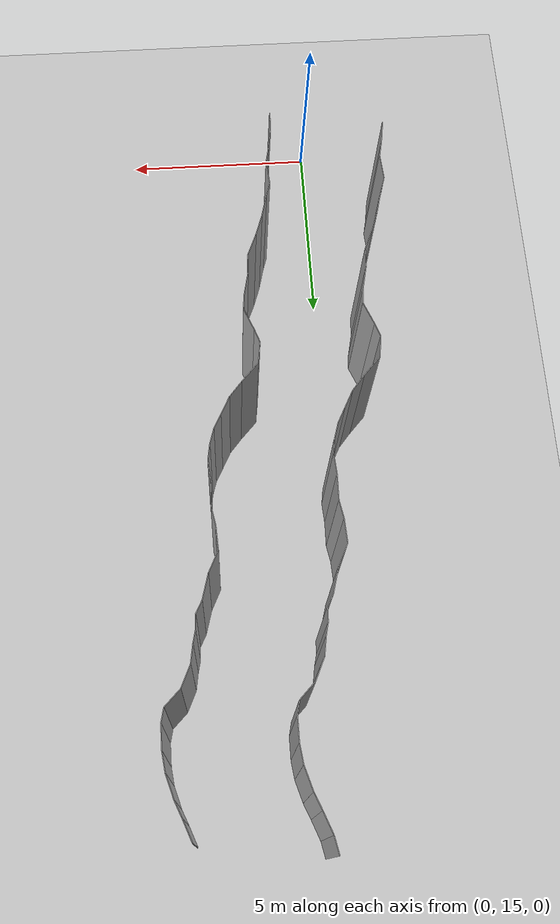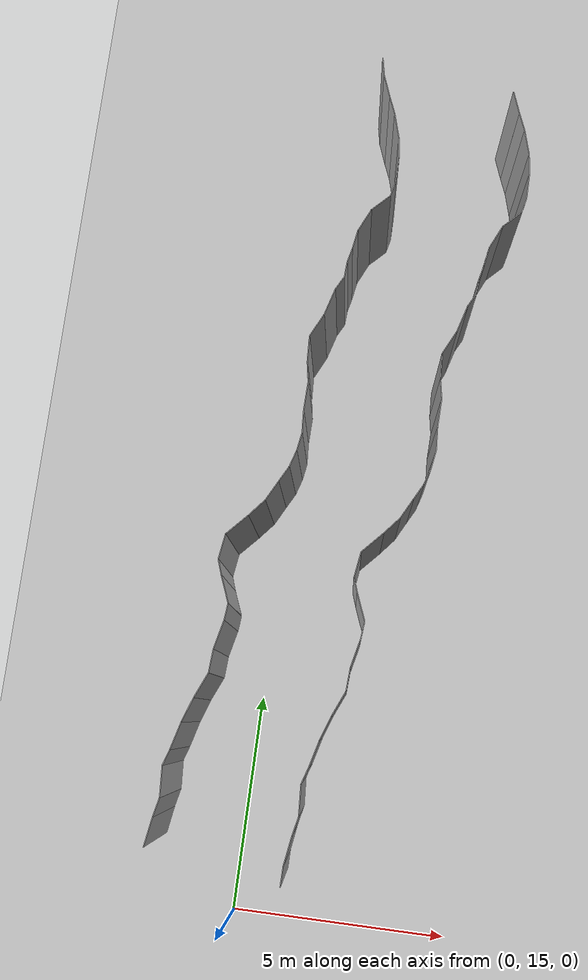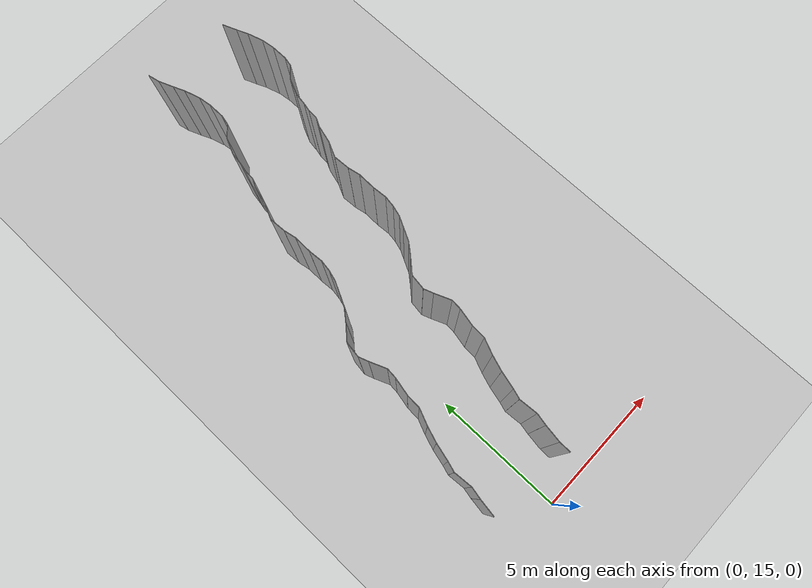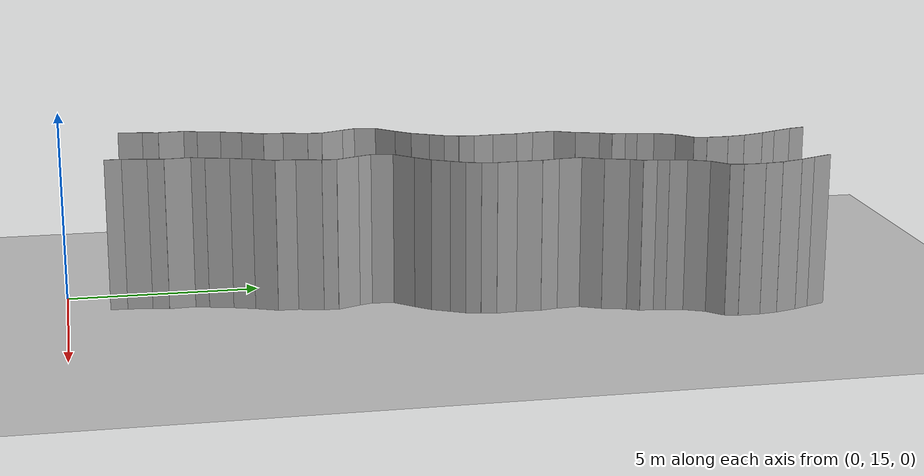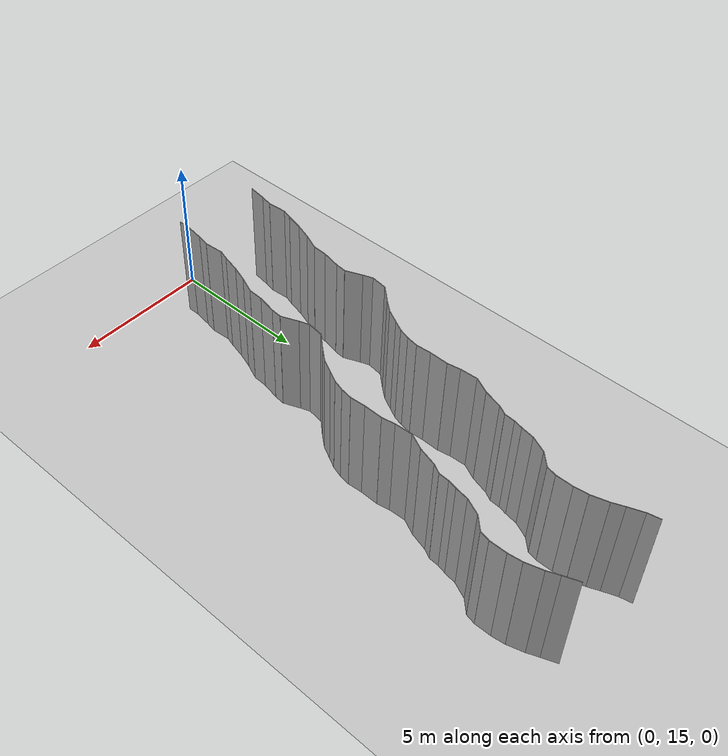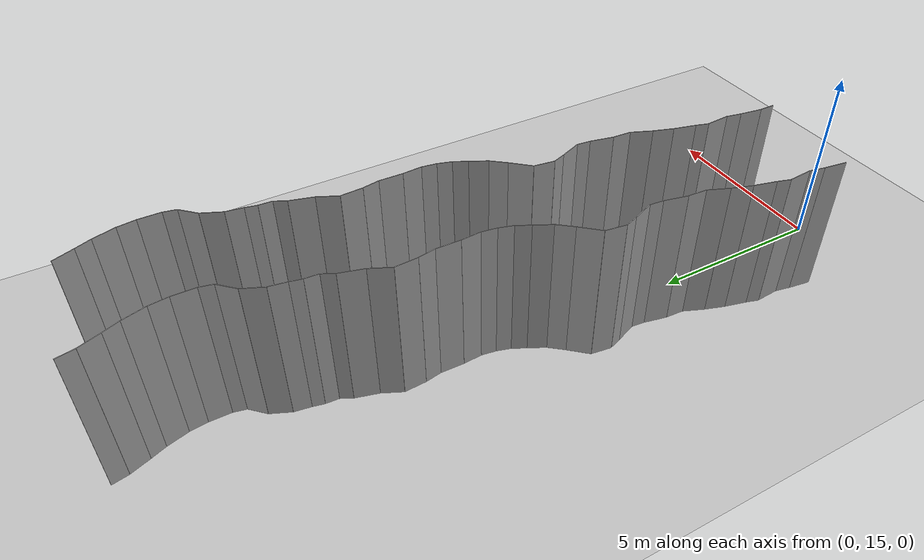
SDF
<sdf version="1.6">
 <world name="default">
  <model name="ground_plane">
   <static>1</static>
   <link name="link">
    <collision name="collision">
     <geometry><plane><normal>0 0 1</normal><size>200 200</size></plane></geometry>
     <surface><friction><ode><mu>100</mu><mu2>50</mu2></ode></friction></surface>
    </collision>
    <visual name="visual">
     <cast_shadows>0</cast_shadows>
     <geometry><plane><normal>0 0 1</normal><size>200 200</size></plane></geometry>
     <material>
      <script><uri>file://media/materials/scripts/gazebo.material</uri><name>Gazebo/Grey</name></script>
     </material>
    </visual>
   </link>
   <pose>0 100 0 0 -0 0</pose>
  </model>
  <model name="wall_73">
   <static>1</static>
   <pose>1.133397073225411 16.312448302352205 2 0 0 -0.007860814081408462</pose>
   <link name="link">
    <collision name="collision"><geometry><box><size>0.02 0.437636026162 4</size></box></geometry></collision>
    <visual name="visual">
     <material>
      <script><name>Gazebo/Grey</name><uri>file://media/materials/scripts/gazebo.material</uri></script>
     </material>
     <geometry><box><size>0.02 0.437636026162 4</size></box></geometry>
    </visual>
   </link>
  </model>
  <model name="wall_74">
   <static>1</static>
   <pose>-1.816891280814868 16.852372335375506 2 0 0 -0.14835587828445984</pose>
   <link name="link">
    <collision name="collision"><geometry><box><size>0.02 0.649358480954 4</size></box></geometry></collision>
    <visual name="visual">
     <material>
      <script><name>Gazebo/Grey</name><uri>file://media/materials/scripts/gazebo.material</uri></script>
     </material>
     <geometry><box><size>0.02 0.649358480954 4</size></box></geometry>
    </visual>
   </link>
  </model>
  <model name="wall_75">
   <static>1</static>
   <pose>1.183108719185132 16.852372335375506 2 0 0 -0.14835587828445984</pose>
   <link name="link">
    <collision name="collision"><geometry><box><size>0.02 0.649358480954 4</size></box></geometry></collision>
    <visual name="visual">
     <material>
      <script><name>Gazebo/Grey</name><uri>file://media/materials/scripts/gazebo.material</uri></script>
     </material>
     <geometry><box><size>0.02 0.649358480954 4</size></box></geometry>
    </visual>
   </link>
  </model>
  <model name="wall_76">
   <static>1</static>
   <pose>-1.7247594297939466 17.385581224090693 2 0 0 -0.20518564760319122</pose>
   <link name="link">
    <collision name="collision"><geometry><box><size>0.02 0.433281077273 4</size></box></geometry></collision>
    <visual name="visual">
     <material>
      <script><name>Gazebo/Grey</name><uri>file://media/materials/scripts/gazebo.material</uri></script>
     </material>
     <geometry><box><size>0.02 0.433281077273 4</size></box></geometry>
    </visual>
   </link>
  </model>
  <model name="wall_77">
   <static>1</static>
   <pose>1.2752405702060534 17.385581224090693 2 0 0 -0.20518564760319122</pose>
   <link name="link">
    <collision name="collision"><geometry><box><size>0.02 0.433281077273 4</size></box></geometry></collision>
    <visual name="visual">
     <material>
      <script><name>Gazebo/Grey</name><uri>file://media/materials/scripts/gazebo.material</uri></script>
     </material>
     <geometry><box><size>0.02 0.433281077273 4</size></box></geometry>
    </visual>
   </link>
  </model>
  <model name="wall_78">
   <static>1</static>
   <pose>-1.7038177128958185 17.93762693356233 2 0 0 0.06813553412664795</pose>
   <link name="link">
    <collision name="collision"><geometry><box><size>0.02 0.681480460559 4</size></box></geometry></collision>
    <visual name="visual">
     <material>
      <script><name>Gazebo/Grey</name><uri>file://media/materials/scripts/gazebo.material</uri></script>
     </material>
     <geometry><box><size>0.02 0.681480460559 4</size></box></geometry>
    </visual>
   </link>
  </model>
  <model name="wall_79">
   <static>1</static>
   <pose>1.2961822871041815 17.93762693356233 2 0 0 0.06813553412664795</pose>
   <link name="link">
    <collision name="collision"><geometry><box><size>0.02 0.681480460559 4</size></box></geometry></collision>
    <visual name="visual">
     <material>
      <script><name>Gazebo/Grey</name><uri>file://media/materials/scripts/gazebo.material</uri></script>
     </material>
     <geometry><box><size>0.02 0.681480460559 4</size></box></geometry>
    </visual>
   </link>
  </model>
  <model name="wall_80">
   <static>1</static>
   <pose>-1.6719285623371034 18.453527863143353 2 0 0 -0.30341766661243313</pose>
   <link name="link">
    <collision name="collision"><geometry><box><size>0.02 0.368746664112 4</size></box></geometry></collision>
    <visual name="visual">
     <material>
      <script><name>Gazebo/Grey</name><uri>file://media/materials/scripts/gazebo.material</uri></script>
     </material>
     <geometry><box><size>0.02 0.368746664112 4</size></box></geometry>
    </visual>
   </link>
  </model>
  <model name="wall_81">
   <static>1</static>
   <pose>1.3280714376628966 18.453527863143353 2 0 0 -0.30341766661243313</pose>
   <link name="link">
    <collision name="collision"><geometry><box><size>0.02 0.368746664112 4</size></box></geometry></collision>
    <visual name="visual">
     <material>
      <script><name>Gazebo/Grey</name><uri>file://media/materials/scripts/gazebo.material</uri></script>
     </material>
     <geometry><box><size>0.02 0.368746664112 4</size></box></geometry>
    </visual>
   </link>
  </model>
  <model name="wall_82">
   <static>1</static>
   <pose>-1.5385484765214832 18.93772542409478 2 0 0 -0.24873321032891926</pose>
   <link name="link">
    <collision name="collision"><geometry><box><size>0.02 0.636067406086 4</size></box></geometry></collision>
    <visual name="visual">
     <material>
      <script><name>Gazebo/Grey</name><uri>file://media/materials/scripts/gazebo.material</uri></script>
     </material>
     <geometry><box><size>0.02 0.636067406086 4</size></box></geometry>
    </visual>
   </link>
  </model>
  <model name="wall_83">
   <static>1</static>
   <pose>1.4614515234785168 18.93772542409478 2 0 0 -0.24873321032891926</pose>
   <link name="link">
    <collision name="collision"><geometry><box><size>0.02 0.636067406086 4</size></box></geometry></collision>
    <visual name="visual">
     <material>
      <script><name>Gazebo/Grey</name><uri>file://media/materials/scripts/gazebo.material</uri></script>
     </material>
     <geometry><box><size>0.02 0.636067406086 4</size></box></geometry>
    </visual>
   </link>
  </model>
  <model name="wall_84">
   <static>1</static>
   <pose>-1.3666559243481262 19.520793661944364 2 0 0 -0.32826254191142534</pose>
   <link name="link">
    <collision name="collision"><geometry><box><size>0.02 0.580648352453 4</size></box></geometry></collision>
    <visual name="visual">
     <material>
      <script><name>Gazebo/Grey</name><uri>file://media/materials/scripts/gazebo.material</uri></script>
     </material>
     <geometry><box><size>0.02 0.580648352453 4</size></box></geometry>
    </visual>
   </link>
  </model>
  <model name="wall_85">
   <static>1</static>
   <pose>1.6333440756518738 19.520793661944364 2 0 0 -0.32826254191142534</pose>
   <link name="link">
    <collision name="collision"><geometry><box><size>0.02 0.580648352453 4</size></box></geometry></collision>
    <visual name="visual">
     <material>
      <script><name>Gazebo/Grey</name><uri>file://media/materials/scripts/gazebo.material</uri></script>
     </material>
     <geometry><box><size>0.02 0.580648352453 4</size></box></geometry>
    </visual>
   </link>
  </model>
  <model name="wall_86">
   <static>1</static>
   <pose>-1.1534943885571574 20.078708159199717 2 0 0 -0.3996156804932362</pose>
   <link name="link">
    <collision name="collision"><geometry><box><size>0.02 0.61460972348 4</size></box></geometry></collision>
    <visual name="visual">
     <material>
      <script><name>Gazebo/Grey</name><uri>file://media/materials/scripts/gazebo.material</uri></script>
     </material>
     <geometry><box><size>0.02 0.61460972348 4</size></box></geometry>
    </visual>
   </link>
  </model>
  <model name="wall_87">
   <static>1</static>
   <pose>1.8465056114428426 20.078708159199717 2 0 0 -0.3996156804932362</pose>
   <link name="link">
    <collision name="collision"><geometry><box><size>0.02 0.61460972348 4</size></box></geometry></collision>
    <visual name="visual">
     <material>
      <script><name>Gazebo/Grey</name><uri>file://media/materials/scripts/gazebo.material</uri></script>
     </material>
     <geometry><box><size>0.02 0.61460972348 4</size></box></geometry>
    </visual>
   </link>
  </model>
  <model name="wall_88">
   <static>1</static>
   <pose>-1.0200352657841782 20.6234163929655 2 0 0 -0.05307291815040809</pose>
   <link name="link">
    <collision name="collision"><geometry><box><size>0.02 0.523969251333 4</size></box></geometry></collision>
    <visual name="visual">
     <material>
      <script><name>Gazebo/Grey</name><uri>file://media/materials/scripts/gazebo.material</uri></script>
     </material>
     <geometry><box><size>0.02 0.523969251333 4</size></box></geometry>
    </visual>
   </link>
  </model>
  <model name="wall_89">
   <static>1</static>
   <pose>1.9799647342158218 20.6234163929655 2 0 0 -0.05307291815040809</pose>
   <link name="link">
    <collision name="collision"><geometry><box><size>0.02 0.523969251333 4</size></box></geometry></collision>
    <visual name="visual">
     <material>
      <script><name>Gazebo/Grey</name><uri>file://media/materials/scripts/gazebo.material</uri></script>
     </material>
     <geometry><box><size>0.02 0.523969251333 4</size></box></geometry>
    </visual>
   </link>
  </model>
  <model name="wall_90">
   <static>1</static>
   <pose>-0.9359213044466046 21.20895832871305 2 0 0 -0.21346356043276166</pose>
   <link name="link">
    <collision name="collision"><geometry><box><size>0.02 0.66289816365 4</size></box></geometry></collision>
    <visual name="visual">
     <material>
      <script><name>Gazebo/Grey</name><uri>file://media/materials/scripts/gazebo.material</uri></script>
     </material>
     <geometry><box><size>0.02 0.66289816365 4</size></box></geometry>
    </visual>
   </link>
  </model>
  <model name="wall_91">
   <static>1</static>
   <pose>2.0640786955533956 21.20895832871305 2 0 0 -0.21346356043276166</pose>
   <link name="link">
    <collision name="collision"><geometry><box><size>0.02 0.66289816365 4</size></box></geometry></collision>
    <visual name="visual">
     <material>
      <script><name>Gazebo/Grey</name><uri>file://media/materials/scripts/gazebo.material</uri></script>
     </material>
     <geometry><box><size>0.02 0.66289816365 4</size></box></geometry>
    </visual>
   </link>
  </model>
  <model name="wall_92">
   <static>1</static>
   <pose>-0.848825271861838 21.7216296808396 2 0 0 -0.08919458513395352</pose>
   <link name="link">
    <collision name="collision"><geometry><box><size>0.02 0.378996904809 4</size></box></geometry></collision>
    <visual name="visual">
     <material>
      <script><name>Gazebo/Grey</name><uri>file://media/materials/scripts/gazebo.material</uri></script>
     </material>
     <geometry><box><size>0.02 0.378996904809 4</size></box></geometry>
    </visual>
   </link>
  </model>
  <model name="wall_93">
   <static>1</static>
   <pose>2.151174728138162 21.7216296808396 2 0 0 -0.08919458513395352</pose>
   <link name="link">
    <collision name="collision"><geometry><box><size>0.02 0.378996904809 4</size></box></geometry></collision>
    <visual name="visual">
     <material>
      <script><name>Gazebo/Grey</name><uri>file://media/materials/scripts/gazebo.material</uri></script>
     </material>
     <geometry><box><size>0.02 0.378996904809 4</size></box></geometry>
    </visual>
   </link>
  </model>
  <model name="wall_94">
   <static>1</static>
   <pose>-0.9506635848219495 22.20506602811699 2 0 0 0.38296611381948487</pose>
   <link name="link">
    <collision name="collision"><geometry><box><size>0.02 0.63541134789 4</size></box></geometry></collision>
    <visual name="visual">
     <material>
      <script><name>Gazebo/Grey</name><uri>file://media/materials/scripts/gazebo.material</uri></script>
     </material>
     <geometry><box><size>0.02 0.63541134789 4</size></box></geometry>
    </visual>
   </link>
  </model>
  <model name="wall_95">
   <static>1</static>
   <pose>2.0493364151780504 22.20506602811699 2 0 0 0.38296611381948487</pose>
   <link name="link">
    <collision name="collision"><geometry><box><size>0.02 0.63541134789 4</size></box></geometry></collision>
    <visual name="visual">
     <material>
      <script><name>Gazebo/Grey</name><uri>file://media/materials/scripts/gazebo.material</uri></script>
     </material>
     <geometry><box><size>0.02 0.63541134789 4</size></box></geometry>
    </visual>
   </link>
  </model>
  <model name="wall_96">
   <static>1</static>
   <pose>-1.128340136040836 22.669004803762913 2 0 0 0.3352094430057979</pose>
   <link name="link">
    <collision name="collision"><geometry><box><size>0.02 0.358445750571 4</size></box></geometry></collision>
    <visual name="visual">
     <material>
      <script><name>Gazebo/Grey</name><uri>file://media/materials/scripts/gazebo.material</uri></script>
     </material>
     <geometry><box><size>0.02 0.358445750571 4</size></box></geometry>
    </visual>
   </link>
  </model>
  <model name="wall_97">
   <static>1</static>
   <pose>1.871659863959164 22.669004803762913 2 0 0 0.3352094430057979</pose>
   <link name="link">
    <collision name="collision"><geometry><box><size>0.02 0.358445750571 4</size></box></geometry></collision>
    <visual name="visual">
     <material>
      <script><name>Gazebo/Grey</name><uri>file://media/materials/scripts/gazebo.material</uri></script>
     </material>
     <geometry><box><size>0.02 0.358445750571 4</size></box></geometry>
    </visual>
   </link>
  </model>
  <model name="wall_98">
   <static>1</static>
   <pose>-1.1476938859109487 23.123007606508512 2 0 0 -0.1381966123171406</pose>
   <link name="link">
    <collision name="collision"><geometry><box><size>0.02 0.574992389249 4</size></box></geometry></collision>
    <visual name="visual">
     <material>
      <script><name>Gazebo/Grey</name><uri>file://media/materials/scripts/gazebo.material</uri></script>
     </material>
     <geometry><box><size>0.02 0.574992389249 4</size></box></geometry>
    </visual>
   </link>
  </model>
  <model name="wall_99">
   <static>1</static>
   <pose>1.8523061140890513 23.123007606508512 2 0 0 -0.1381966123171406</pose>
   <link name="link">
    <collision name="collision"><geometry><box><size>0.02 0.574992389249 4</size></box></geometry></collision>
    <visual name="visual">
     <material>
      <script><name>Gazebo/Grey</name><uri>file://media/materials/scripts/gazebo.material</uri></script>
     </material>
     <geometry><box><size>0.02 0.574992389249 4</size></box></geometry>
    </visual>
   </link>
  </model>
  <model name="wall_100">
   <static>1</static>
   <pose>-0.8898212224910662 23.64646604709157 2 0 0 -0.7407091132913584</pose>
   <link name="link">
    <collision name="collision"><geometry><box><size>0.02 0.646900773663 4</size></box></geometry></collision>
    <visual name="visual">
     <material>
      <script><name>Gazebo/Grey</name><uri>file://media/materials/scripts/gazebo.material</uri></script>
     </material>
     <geometry><box><size>0.02 0.646900773663 4</size></box></geometry>
    </visual>
   </link>
  </model>
  <model name="wall_101">
   <static>1</static>
   <pose>2.110178777508934 23.64646604709157 2 0 0 -0.7407091132913584</pose>
   <link name="link">
    <collision name="collision"><geometry><box><size>0.02 0.646900773663 4</size></box></geometry></collision>
    <visual name="visual">
     <material>
      <script><name>Gazebo/Grey</name><uri>file://media/materials/scripts/gazebo.material</uri></script>
     </material>
     <geometry><box><size>0.02 0.646900773663 4</size></box></geometry>
    </visual>
   </link>
  </model>
  <model name="wall_102">
   <static>1</static>
   <pose>-0.5120971764916322 24.076776949423973 2 0 0 -0.6940694454182406</pose>
   <link name="link">
    <collision name="collision"><geometry><box><size>0.02 0.498556838239 4</size></box></geometry></collision>
    <visual name="visual">
     <material>
      <script><name>Gazebo/Grey</name><uri>file://media/materials/scripts/gazebo.material</uri></script>
     </material>
     <geometry><box><size>0.02 0.498556838239 4</size></box></geometry>
    </visual>
   </link>
  </model>
  <model name="wall_103">
   <static>1</static>
   <pose>2.4879028235083678 24.076776949423973 2 0 0 -0.6940694454182406</pose>
   <link name="link">
    <collision name="collision"><geometry><box><size>0.02 0.498556838239 4</size></box></geometry></collision>
    <visual name="visual">
     <material>
      <script><name>Gazebo/Grey</name><uri>file://media/materials/scripts/gazebo.material</uri></script>
     </material>
     <geometry><box><size>0.02 0.498556838239 4</size></box></geometry>
    </visual>
   </link>
  </model>
  <model name="wall_104">
   <static>1</static>
   <pose>-0.23589487045866298 24.494763606191505 2 0 0 -0.47613775009903936</pose>
   <link name="link">
    <collision name="collision"><geometry><box><size>0.02 0.509419800078 4</size></box></geometry></collision>
    <visual name="visual">
     <material>
      <script><name>Gazebo/Grey</name><uri>file://media/materials/scripts/gazebo.material</uri></script>
     </material>
     <geometry><box><size>0.02 0.509419800078 4</size></box></geometry>
    </visual>
   </link>
  </model>
  <model name="wall_105">
   <static>1</static>
   <pose>2.764105129541337 24.494763606191505 2 0 0 -0.47613775009903936</pose>
   <link name="link">
    <collision name="collision"><geometry><box><size>0.02 0.509419800078 4</size></box></geometry></collision>
    <visual name="visual">
     <material>
      <script><name>Gazebo/Grey</name><uri>file://media/materials/scripts/gazebo.material</uri></script>
     </material>
     <geometry><box><size>0.02 0.509419800078 4</size></box></geometry>
    </visual>
   </link>
  </model>
  <model name="wall_106">
   <static>1</static>
   <pose>-0.025162264664440853 24.901973967312856 2 0 0 -0.47931911530710875</pose>
   <link name="link">
    <collision name="collision"><geometry><box><size>0.02 0.407594997462 4</size></box></geometry></collision>
    <visual name="visual">
     <material>
      <script><name>Gazebo/Grey</name><uri>file://media/materials/scripts/gazebo.material</uri></script>
     </material>
     <geometry><box><size>0.02 0.407594997462 4</size></box></geometry>
    </visual>
   </link>
  </model>
  <model name="wall_107">
   <static>1</static>
   <pose>2.974837735335559 24.901973967312856 2 0 0 -0.47931911530710875</pose>
   <link name="link">
    <collision name="collision"><geometry><box><size>0.02 0.407594997462 4</size></box></geometry></collision>
    <visual name="visual">
     <material>
      <script><name>Gazebo/Grey</name><uri>file://media/materials/scripts/gazebo.material</uri></script>
     </material>
     <geometry><box><size>0.02 0.407594997462 4</size></box></geometry>
    </visual>
   </link>
  </model>
  <model name="wall_108">
   <static>1</static>
   <pose>0.1255518096798071 25.27290882169074 2 0 0 -0.28999241722080604</pose>
   <link name="link">
    <collision name="collision"><geometry><box><size>0.02 0.396773820645 4</size></box></geometry></collision>
    <visual name="visual">
     <material>
      <script><name>Gazebo/Grey</name><uri>file://media/materials/scripts/gazebo.material</uri></script>
     </material>
     <geometry><box><size>0.02 0.396773820645 4</size></box></geometry>
    </visual>
   </link>
  </model>
  <model name="wall_109">
   <static>1</static>
   <pose>3.125551809679807 25.27290882169074 2 0 0 -0.28999241722080604</pose>
   <link name="link">
    <collision name="collision"><geometry><box><size>0.02 0.396773820645 4</size></box></geometry></collision>
    <visual name="visual">
     <material>
      <script><name>Gazebo/Grey</name><uri>file://media/materials/scripts/gazebo.material</uri></script>
     </material>
     <geometry><box><size>0.02 0.396773820645 4</size></box></geometry>
    </visual>
   </link>
  </model>
  <model name="wall_110">
   <static>1</static>
   <pose>0.2130686116777172 25.664112194559277 2 0 0 -0.15192360158569937</pose>
   <link name="link">
    <collision name="collision"><geometry><box><size>0.02 0.406886405152 4</size></box></geometry></collision>
    <visual name="visual">
     <material>
      <script><name>Gazebo/Grey</name><uri>file://media/materials/scripts/gazebo.material</uri></script>
     </material>
     <geometry><box><size>0.02 0.406886405152 4</size></box></geometry>
    </visual>
   </link>
  </model>
  <model name="wall_111">
   <static>1</static>
   <pose>3.213068611677717 25.664112194559277 2 0 0 -0.15192360158569937</pose>
   <link name="link">
    <collision name="collision"><geometry><box><size>0.02 0.406886405152 4</size></box></geometry></collision>
    <visual name="visual">
     <material>
      <script><name>Gazebo/Grey</name><uri>file://media/materials/scripts/gazebo.material</uri></script>
     </material>
     <geometry><box><size>0.02 0.406886405152 4</size></box></geometry>
    </visual>
   </link>
  </model>
  <model name="wall_112">
   <static>1</static>
   <pose>0.22561137117624552 26.126721103445817 2 0 0 0.0696602478694238</pose>
   <link name="link">
    <collision name="collision"><geometry><box><size>0.02 0.524289572353 4</size></box></geometry></collision>
    <visual name="visual">
     <material>
      <script><name>Gazebo/Grey</name><uri>file://media/materials/scripts/gazebo.material</uri></script>
     </material>
     <geometry><box><size>0.02 0.524289572353 4</size></box></geometry>
    </visual>
   </link>
  </model>
  <model name="wall_113">
   <static>1</static>
   <pose>3.2256113711762455 26.126721103445817 2 0 0 0.0696602478694238</pose>
   <link name="link">
    <collision name="collision"><geometry><box><size>0.02 0.524289572353 4</size></box></geometry></collision>
    <visual name="visual">
     <material>
      <script><name>Gazebo/Grey</name><uri>file://media/materials/scripts/gazebo.material</uri></script>
     </material>
     <geometry><box><size>0.02 0.524289572353 4</size></box></geometry>
    </visual>
   </link>
  </model>
  <model name="wall_114">
   <static>1</static>
   <pose>0.21384316813217583 26.71216541169848 2 0 0 -0.01999547176088186</pose>
   <link name="link">
    <collision name="collision"><geometry><box><size>0.02 0.648000137586 4</size></box></geometry></collision>
    <visual name="visual">
     <material>
      <script><name>Gazebo/Grey</name><uri>file://media/materials/scripts/gazebo.material</uri></script>
     </material>
     <geometry><box><size>0.02 0.648000137586 4</size></box></geometry>
    </visual>
   </link>
  </model>
  <model name="wall_115">
   <static>1</static>
   <pose>3.213843168132176 26.71216541169848 2 0 0 -0.01999547176088186</pose>
   <link name="link">
    <collision name="collision"><geometry><box><size>0.02 0.648000137586 4</size></box></geometry></collision>
    <visual name="visual">
     <material>
      <script><name>Gazebo/Grey</name><uri>file://media/materials/scripts/gazebo.material</uri></script>
     </material>
     <geometry><box><size>0.02 0.648000137586 4</size></box></geometry>
    </visual>
   </link>
  </model>
  <model name="wall_116">
   <static>1</static>
   <pose>0.1786469160589521 27.261604471830704 2 0 0 0.18274377982499695</pose>
   <link name="link">
    <collision name="collision"><geometry><box><size>0.02 0.458644513933 4</size></box></geometry></collision>
    <visual name="visual">
     <material>
      <script><name>Gazebo/Grey</name><uri>file://media/materials/scripts/gazebo.material</uri></script>
     </material>
     <geometry><box><size>0.02 0.458644513933 4</size></box></geometry>
    </visual>
   </link>
  </model>
  <model name="wall_117">
   <static>1</static>
   <pose>3.178646916058952 27.261604471830704 2 0 0 0.18274377982499695</pose>
   <link name="link">
    <collision name="collision"><geometry><box><size>0.02 0.458644513933 4</size></box></geometry></collision>
    <visual name="visual">
     <material>
      <script><name>Gazebo/Grey</name><uri>file://media/materials/scripts/gazebo.material</uri></script>
     </material>
     <geometry><box><size>0.02 0.458644513933 4</size></box></geometry>
    </visual>
   </link>
  </model>
  <model name="wall_118">
   <static>1</static>
   <pose>0.12147765407679706 27.78610415848084 2 0 0 0.05177682057464743</pose>
   <link name="link">
    <collision name="collision"><geometry><box><size>0.02 0.598794309908 4</size></box></geometry></collision>
    <visual name="visual">
     <material>
      <script><name>Gazebo/Grey</name><uri>file://media/materials/scripts/gazebo.material</uri></script>
     </material>
     <geometry><box><size>0.02 0.598794309908 4</size></box></geometry>
    </visual>
   </link>
  </model>
  <model name="wall_119">
   <static>1</static>
   <pose>3.1214776540767972 27.78610415848084 2 0 0 0.05177682057464743</pose>
   <link name="link">
    <collision name="collision"><geometry><box><size>0.02 0.598794309908 4</size></box></geometry></collision>
    <visual name="visual">
     <material>
      <script><name>Gazebo/Grey</name><uri>file://media/materials/scripts/gazebo.material</uri></script>
     </material>
     <geometry><box><size>0.02 0.598794309908 4</size></box></geometry>
    </visual>
   </link>
  </model>
  <model name="wall_120">
   <static>1</static>
   <pose>0.23464056865283828 28.352089006159584 2 0 0 -0.44905046242438323</pose>
   <link name="link">
    <collision name="collision"><geometry><box><size>0.02 0.592742504045 4</size></box></geometry></collision>
    <visual name="visual">
     <material>
      <script><name>Gazebo/Grey</name><uri>file://media/materials/scripts/gazebo.material</uri></script>
     </material>
     <geometry><box><size>0.02 0.592742504045 4</size></box></geometry>
    </visual>
   </link>
  </model>
  <model name="wall_121">
   <static>1</static>
   <pose>3.2346405686528383 28.352089006159584 2 0 0 -0.44905046242438323</pose>
   <link name="link">
    <collision name="collision"><geometry><box><size>0.02 0.592742504045 4</size></box></geometry></collision>
    <visual name="visual">
     <material>
      <script><name>Gazebo/Grey</name><uri>file://media/materials/scripts/gazebo.material</uri></script>
     </material>
     <geometry><box><size>0.02 0.592742504045 4</size></box></geometry>
    </visual>
   </link>
  </model>
  <model name="wall_122">
   <static>1</static>
   <pose>0.44948920738320963 28.93048766350913 2 0 0 -0.27001681844773645</pose>
   <link name="link">
    <collision name="collision"><geometry><box><size>0.02 0.646234882567 4</size></box></geometry></collision>
    <visual name="visual">
     <material>
      <script><name>Gazebo/Grey</name><uri>file://media/materials/scripts/gazebo.material</uri></script>
     </material>
     <geometry><box><size>0.02 0.646234882567 4</size></box></geometry>
    </visual>
   </link>
  </model>
  <model name="wall_123">
   <static>1</static>
   <pose>3.4494892073832095 28.93048766350913 2 0 0 -0.27001681844773645</pose>
   <link name="link">
    <collision name="collision"><geometry><box><size>0.02 0.646234882567 4</size></box></geometry></collision>
    <visual name="visual">
     <material>
      <script><name>Gazebo/Grey</name><uri>file://media/materials/scripts/gazebo.material</uri></script>
     </material>
     <geometry><box><size>0.02 0.646234882567 4</size></box></geometry>
    </visual>
   </link>
  </model>
  <model name="wall_124">
   <static>1</static>
   <pose>0.6162840777324186 29.3955263917999 2 0 0 -0.4831858729917589</pose>
   <link name="link">
    <collision name="collision"><geometry><box><size>0.02 0.34698057918 4</size></box></geometry></collision>
    <visual name="visual">
     <material>
      <script><name>Gazebo/Grey</name><uri>file://media/materials/scripts/gazebo.material</uri></script>
     </material>
     <geometry><box><size>0.02 0.34698057918 4</size></box></geometry>
    </visual>
   </link>
  </model>
  <model name="wall_125">
   <static>1</static>
   <pose>3.6162840777324186 29.3955263917999 2 0 0 -0.4831858729917589</pose>
   <link name="link">
    <collision name="collision"><geometry><box><size>0.02 0.34698057918 4</size></box></geometry></collision>
    <visual name="visual">
     <material>
      <script><name>Gazebo/Grey</name><uri>file://media/materials/scripts/gazebo.material</uri></script>
     </material>
     <geometry><box><size>0.02 0.34698057918 4</size></box></geometry>
    </visual>
   </link>
  </model>
  <model name="wall_126">
   <static>1</static>
   <pose>0.7058007923226 29.728565086092427 2 0 0 -0.04963689229328334</pose>
   <link name="link">
    <collision name="collision"><geometry><box><size>0.02 0.359261892584 4</size></box></geometry></collision>
    <visual name="visual">
     <material>
      <script><name>Gazebo/Grey</name><uri>file://media/materials/scripts/gazebo.material</uri></script>
     </material>
     <geometry><box><size>0.02 0.359261892584 4</size></box></geometry>
    </visual>
   </link>
  </model>
  <model name="wall_127">
   <static>1</static>
   <pose>3.7058007923226 29.728565086092427 2 0 0 -0.04963689229328334</pose>
   <link name="link">
    <collision name="collision"><geometry><box><size>0.02 0.359261892584 4</size></box></geometry></collision>
    <visual name="visual">
     <material>
      <script><name>Gazebo/Grey</name><uri>file://media/materials/scripts/gazebo.material</uri></script>
     </material>
     <geometry><box><size>0.02 0.359261892584 4</size></box></geometry>
    </visual>
   </link>
  </model>
  <model name="wall_128">
   <static>1</static>
   <pose>0.7498534801259733 30.06112484624256 2 0 0 -0.2255443832553479</pose>
   <link name="link">
    <collision name="collision"><geometry><box><size>0.02 0.314259521103 4</size></box></geometry></collision>
    <visual name="visual">
     <material>
      <script><name>Gazebo/Grey</name><uri>file://media/materials/scripts/gazebo.material</uri></script>
     </material>
     <geometry><box><size>0.02 0.314259521103 4</size></box></geometry>
    </visual>
   </link>
  </model>
  <model name="wall_129">
   <static>1</static>
   <pose>3.7498534801259735 30.06112484624256 2 0 0 -0.2255443832553479</pose>
   <link name="link">
    <collision name="collision"><geometry><box><size>0.02 0.314259521103 4</size></box></geometry></collision>
    <visual name="visual">
     <material>
      <script><name>Gazebo/Grey</name><uri>file://media/materials/scripts/gazebo.material</uri></script>
     </material>
     <geometry><box><size>0.02 0.314259521103 4</size></box></geometry>
    </visual>
   </link>
  </model>
  <model name="wall_130">
   <static>1</static>
   <pose>0.8202940374581777 30.43915812562923 2 0 0 -0.15570215806998922</pose>
   <link name="link">
    <collision name="collision"><geometry><box><size>0.02 0.455273943294 4</size></box></geometry></collision>
    <visual name="visual">
     <material>
      <script><name>Gazebo/Grey</name><uri>file://media/materials/scripts/gazebo.material</uri></script>
     </material>
     <geometry><box><size>0.02 0.455273943294 4</size></box></geometry>
    </visual>
   </link>
  </model>
  <model name="wall_131">
   <static>1</static>
   <pose>3.8202940374581775 30.43915812562923 2 0 0 -0.15570215806998922</pose>
   <link name="link">
    <collision name="collision"><geometry><box><size>0.02 0.455273943294 4</size></box></geometry></collision>
    <visual name="visual">
     <material>
      <script><name>Gazebo/Grey</name><uri>file://media/materials/scripts/gazebo.material</uri></script>
     </material>
     <geometry><box><size>0.02 0.455273943294 4</size></box></geometry>
    </visual>
   </link>
  </model>
  <model name="wall_132">
   <static>1</static>
   <pose>0.9759990664653507 30.929969723993814 2 0 0 -0.4251554060714948</pose>
   <link name="link">
    <collision name="collision"><geometry><box><size>0.02 0.583832663573 4</size></box></geometry></collision>
    <visual name="visual">
     <material>
      <script><name>Gazebo/Grey</name><uri>file://media/materials/scripts/gazebo.material</uri></script>
     </material>
     <geometry><box><size>0.02 0.583832663573 4</size></box></geometry>
    </visual>
   </link>
  </model>
  <model name="wall_133">
   <static>1</static>
   <pose>3.975999066465351 30.929969723993814 2 0 0 -0.4251554060714948</pose>
   <link name="link">
    <collision name="collision"><geometry><box><size>0.02 0.583832663573 4</size></box></geometry></collision>
    <visual name="visual">
     <material>
      <script><name>Gazebo/Grey</name><uri>file://media/materials/scripts/gazebo.material</uri></script>
     </material>
     <geometry><box><size>0.02 0.583832663573 4</size></box></geometry>
    </visual>
   </link>
  </model>
  <model name="wall_134">
   <static>1</static>
   <pose>1.2895685842342366 31.389309117850935 2 0 0 -0.7847618128862949</pose>
   <link name="link">
    <collision name="collision"><geometry><box><size>0.02 0.5467011844 4</size></box></geometry></collision>
    <visual name="visual">
     <material>
      <script><name>Gazebo/Grey</name><uri>file://media/materials/scripts/gazebo.material</uri></script>
     </material>
     <geometry><box><size>0.02 0.5467011844 4</size></box></geometry>
    </visual>
   </link>
  </model>
  <model name="wall_135">
   <static>1</static>
   <pose>4.289568584234237 31.389309117850935 2 0 0 -0.7847618128862949</pose>
   <link name="link">
    <collision name="collision"><geometry><box><size>0.02 0.5467011844 4</size></box></geometry></collision>
    <visual name="visual">
     <material>
      <script><name>Gazebo/Grey</name><uri>file://media/materials/scripts/gazebo.material</uri></script>
     </material>
     <geometry><box><size>0.02 0.5467011844 4</size></box></geometry>
    </visual>
   </link>
  </model>
  <model name="wall_136">
   <static>1</static>
   <pose>1.5207012554433779 31.75293859552379 2 0 0 -0.21946000550123906</pose>
   <link name="link">
    <collision name="collision"><geometry><box><size>0.02 0.348802906399 4</size></box></geometry></collision>
    <visual name="visual">
     <material>
      <script><name>Gazebo/Grey</name><uri>file://media/materials/scripts/gazebo.material</uri></script>
     </material>
     <geometry><box><size>0.02 0.348802906399 4</size></box></geometry>
    </visual>
   </link>
  </model>
  <model name="wall_137">
   <static>1</static>
   <pose>4.520701255443377 31.75293859552379 2 0 0 -0.21946000550123906</pose>
   <link name="link">
    <collision name="collision"><geometry><box><size>0.02 0.348802906399 4</size></box></geometry></collision>
    <visual name="visual">
     <material>
      <script><name>Gazebo/Grey</name><uri>file://media/materials/scripts/gazebo.material</uri></script>
     </material>
     <geometry><box><size>0.02 0.348802906399 4</size></box></geometry>
    </visual>
   </link>
  </model>
  <model name="wall_138">
   <static>1</static>
   <pose>1.55835137744619 32.21424014301017 2 0 0 0.0010908561495219218</pose>
   <link name="link">
    <collision name="collision"><geometry><box><size>0.02 0.5821665204 4</size></box></geometry></collision>
    <visual name="visual">
     <material>
      <script><name>Gazebo/Grey</name><uri>file://media/materials/scripts/gazebo.material</uri></script>
     </material>
     <geometry><box><size>0.02 0.5821665204 4</size></box></geometry>
    </visual>
   </link>
  </model>
  <model name="wall_139">
   <static>1</static>
   <pose>4.55835137744619 32.21424014301017 2 0 0 0.0010908561495219218</pose>
   <link name="link">
    <collision name="collision"><geometry><box><size>0.02 0.5821665204 4</size></box></geometry></collision>
    <visual name="visual">
     <material>
      <script><name>Gazebo/Grey</name><uri>file://media/materials/scripts/gazebo.material</uri></script>
     </material>
     <geometry><box><size>0.02 0.5821665204 4</size></box></geometry>
    </visual>
   </link>
  </model>
  <model name="wall_140">
   <static>1</static>
   <pose>1.5278825649954908 32.739989917627575 2 0 0 0.1277854529049571</pose>
   <link name="link">
    <collision name="collision"><geometry><box><size>0.02 0.473191521953 4</size></box></geometry></collision>
    <visual name="visual">
     <material>
      <script><name>Gazebo/Grey</name><uri>file://media/materials/scripts/gazebo.material</uri></script>
     </material>
     <geometry><box><size>0.02 0.473191521953 4</size></box></geometry>
    </visual>
   </link>
  </model>
  <model name="wall_141">
   <static>1</static>
   <pose>4.52788256499549 32.739989917627575 2 0 0 0.1277854529049571</pose>
   <link name="link">
    <collision name="collision"><geometry><box><size>0.02 0.473191521953 4</size></box></geometry></collision>
    <visual name="visual">
     <material>
      <script><name>Gazebo/Grey</name><uri>file://media/materials/scripts/gazebo.material</uri></script>
     </material>
     <geometry><box><size>0.02 0.473191521953 4</size></box></geometry>
    </visual>
   </link>
  </model>
  <model name="wall_142">
   <static>1</static>
   <pose>1.4132706696853092 33.25752887209525 2 0 0 0.2901555178018054</pose>
   <link name="link">
    <collision name="collision"><geometry><box><size>0.02 0.590424641988 4</size></box></geometry></collision>
    <visual name="visual">
     <material>
      <script><name>Gazebo/Grey</name><uri>file://media/materials/scripts/gazebo.material</uri></script>
     </material>
     <geometry><box><size>0.02 0.590424641988 4</size></box></geometry>
    </visual>
   </link>
  </model>
  <model name="wall_143">
   <static>1</static>
   <pose>4.413270669685309 33.25752887209525 2 0 0 0.2901555178018054</pose>
   <link name="link">
    <collision name="collision"><geometry><box><size>0.02 0.590424641988 4</size></box></geometry></collision>
    <visual name="visual">
     <material>
      <script><name>Gazebo/Grey</name><uri>file://media/materials/scripts/gazebo.material</uri></script>
     </material>
     <geometry><box><size>0.02 0.590424641988 4</size></box></geometry>
    </visual>
   </link>
  </model>
  <model name="wall_144">
   <static>1</static>
   <pose>1.2471854840154069 33.73537947325544 2 0 0 0.3964663121347487</pose>
   <link name="link">
    <collision name="collision"><geometry><box><size>0.02 0.422748727965 4</size></box></geometry></collision>
    <visual name="visual">
     <material>
      <script><name>Gazebo/Grey</name><uri>file://media/materials/scripts/gazebo.material</uri></script>
     </material>
     <geometry><box><size>0.02 0.422748727965 4</size></box></geometry>
    </visual>
   </link>
  </model>
  <model name="wall_145">
   <static>1</static>
   <pose>4.247185484015407 33.73537947325544 2 0 0 0.3964663121347487</pose>
   <link name="link">
    <collision name="collision"><geometry><box><size>0.02 0.422748727965 4</size></box></geometry></collision>
    <visual name="visual">
     <material>
      <script><name>Gazebo/Grey</name><uri>file://media/materials/scripts/gazebo.material</uri></script>
     </material>
     <geometry><box><size>0.02 0.422748727965 4</size></box></geometry>
    </visual>
   </link>
  </model>
  <model name="wall_146">
   <static>1</static>
   <pose>1.066581053795679 34.184890137559485 2 0 0 0.37087443803420506</pose>
   <link name="link">
    <collision name="collision"><geometry><box><size>0.02 0.546200399746 4</size></box></geometry></collision>
    <visual name="visual">
     <material>
      <script><name>Gazebo/Grey</name><uri>file://media/materials/scripts/gazebo.material</uri></script>
     </material>
     <geometry><box><size>0.02 0.546200399746 4</size></box></geometry>
    </visual>
   </link>
  </model>
  <model name="wall_147">
   <static>1</static>
   <pose>4.066581053795679 34.184890137559485 2 0 0 0.37087443803420506</pose>
   <link name="link">
    <collision name="collision"><geometry><box><size>0.02 0.546200399746 4</size></box></geometry></collision>
    <visual name="visual">
     <material>
      <script><name>Gazebo/Grey</name><uri>file://media/materials/scripts/gazebo.material</uri></script>
     </material>
     <geometry><box><size>0.02 0.546200399746 4</size></box></geometry>
    </visual>
   </link>
  </model>
  <model name="wall_148">
   <static>1</static>
   <pose>0.9239204196627675 34.65008082705074 2 0 0 0.20445626135803957</pose>
   <link name="link">
    <collision name="collision"><geometry><box><size>0.02 0.43027876864 4</size></box></geometry></collision>
    <visual name="visual">
     <material>
      <script><name>Gazebo/Grey</name><uri>file://media/materials/scripts/gazebo.material</uri></script>
     </material>
     <geometry><box><size>0.02 0.43027876864 4</size></box></geometry>
    </visual>
   </link>
  </model>
 </world>
</sdf>
